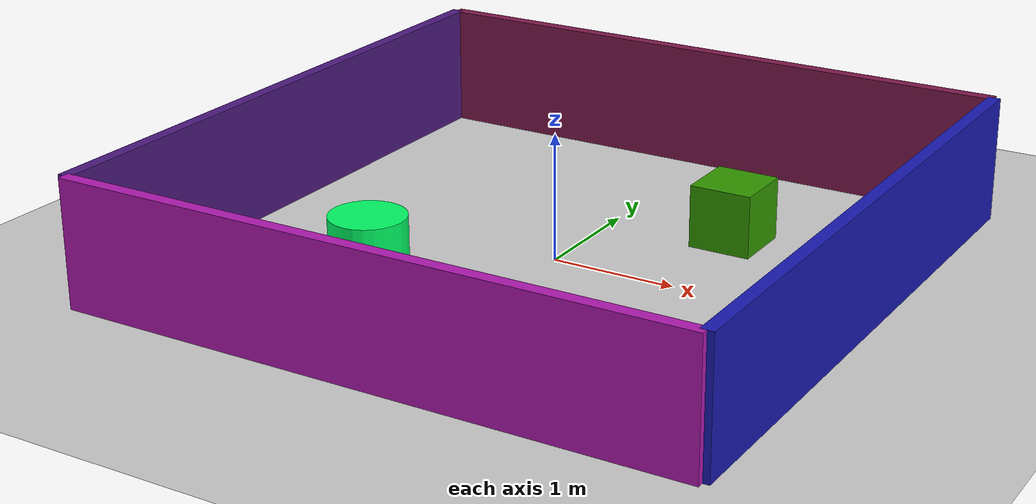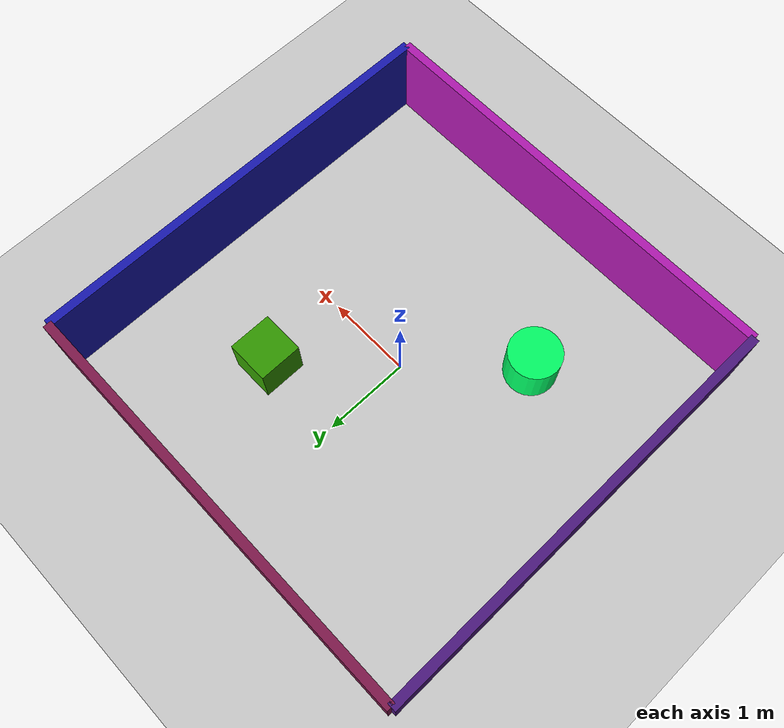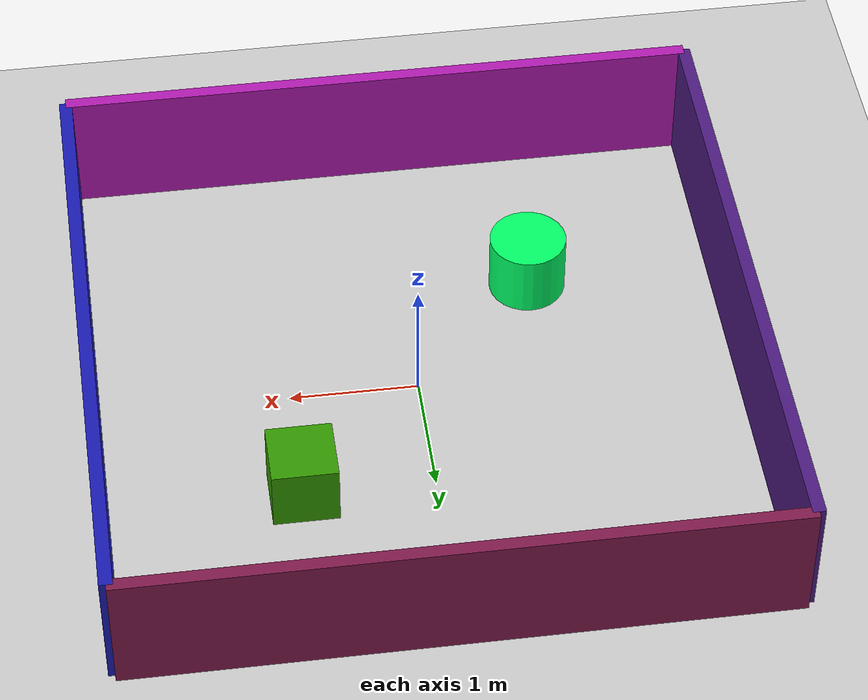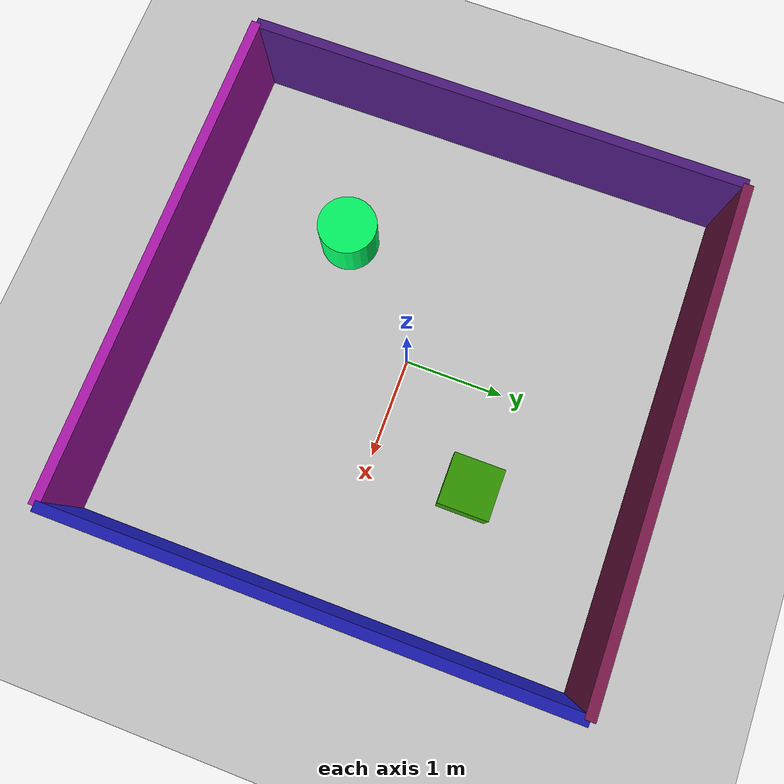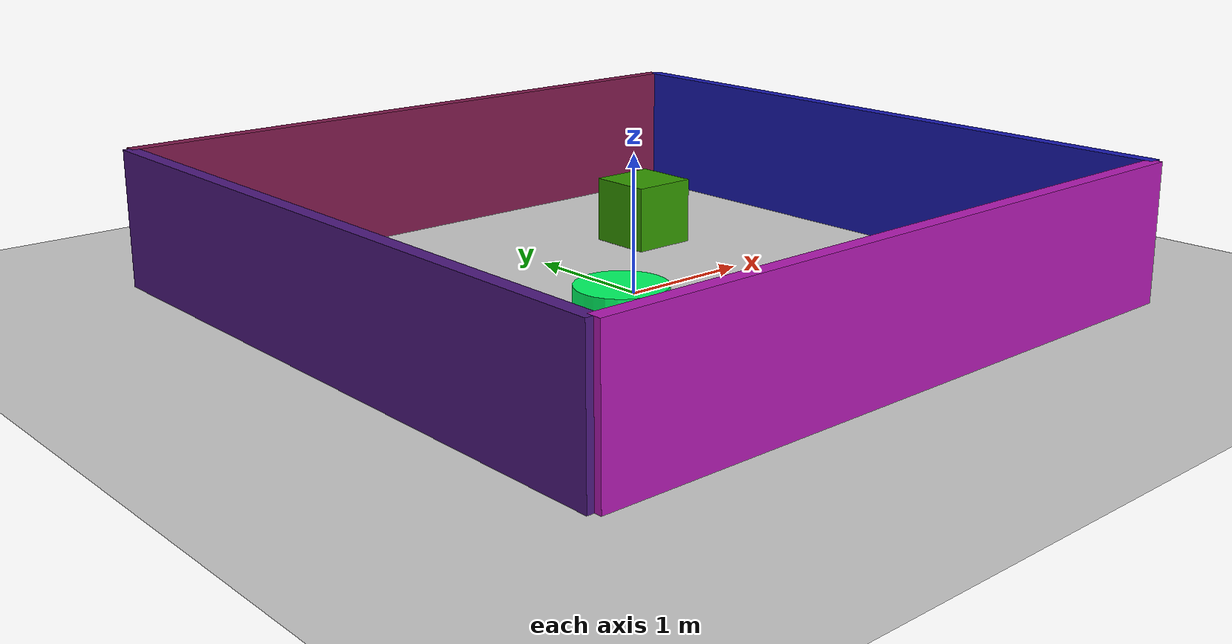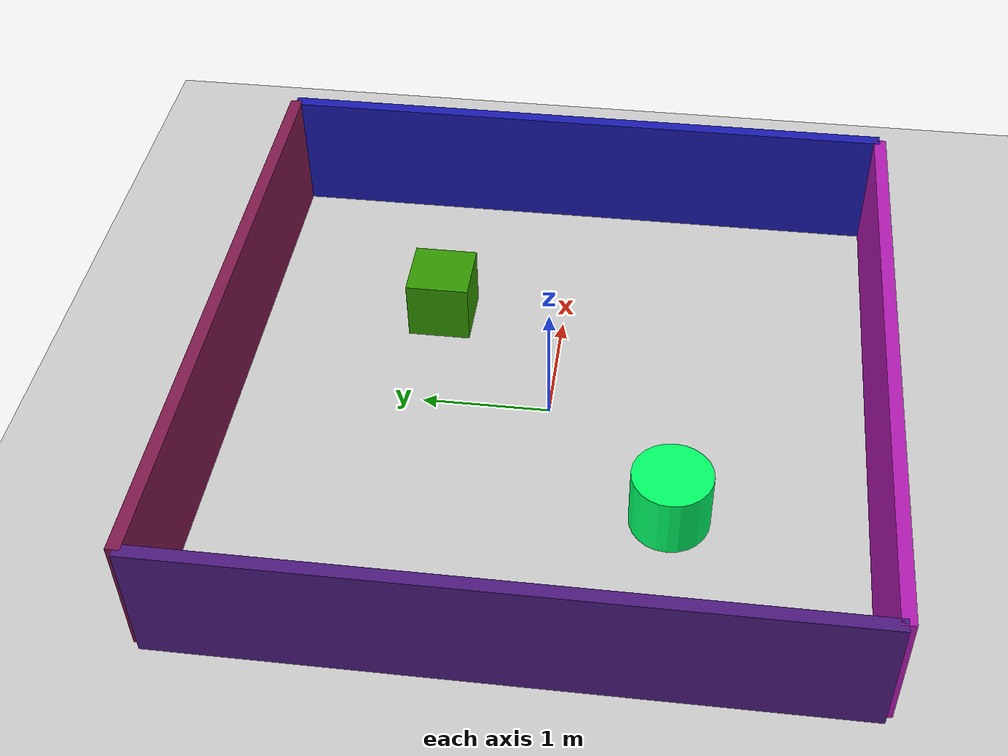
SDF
<?xml version="1.0" ?>
<sdf version="1.8">
  <world name="jetcar_world">
    <physics name="10ms" type="ignored">
      <max_step_size>0.01</max_step_size>
      <real_time_factor>1.0</real_time_factor>
    </physics>
    <plugin filename="gz-sim-physics-system" name="gz::sim::systems::Physics" />
    <plugin filename="gz-sim-user-commands-system" name="gz::sim::systems::UserCommands" />
    <plugin filename="gz-sim-scene-broadcaster-system" name="gz::sim::systems::SceneBroadcaster" />
    <plugin filename="gz-sim-sensors-system" name="gz::sim::systems::Sensors">
      <render_engine>ogre2</render_engine>
    </plugin>
    <plugin filename="gz-sim-imu-system" name="gz::sim::systems::Imu" />

    <light type="directional" name="sun">
      <cast_shadows>true</cast_shadows>
      <pose>0 0 10 0 0 0</pose>
      <diffuse>0.8 0.8 0.8 1</diffuse>
      <specular>0.2 0.2 0.2 1</specular>
      <attenuation>
        <range>1000</range>
        <constant>0.9</constant>
        <linear>0.01</linear>
        <quadratic>0.001</quadratic>
      </attenuation>
      <direction>-0.5 0.1 -0.9</direction>
    </light>

    <model name="ground_plane">
      <static>true</static>
      <link name="link">
        <collision name="collision">
          <geometry><plane><normal>0 0 1</normal><size>100 100</size></plane></geometry>
        </collision>
        <visual name="visual">
          <geometry><plane><normal>0 0 1</normal><size>100 100</size></plane></geometry>
          <material><ambient>0.8 0.8 0.8 1</ambient><diffuse>0.8 0.8 0.8 1</diffuse><specular>0.8 0.8 0.8 1</specular></material>
        </visual>
      </link>
    </model>

    <!-- Simple Room Walls (5x5m) -->
    <model name="wall_front">
      <static>true</static><pose>2.5 0 0.5 0 0 0</pose>
      <link name="link"><collision name="c"><geometry><box><size>0.1 5.0 1.0</size></box></geometry></collision>
      <visual name="v"><geometry><box><size>0.1 5.0 1.0</size></box></geometry><material><ambient>0.7 0.7 0.7 1</ambient><diffuse>0.1 0.1 0.7 1</diffuse></material></visual></link>
    </model>
    <model name="wall_back">
      <static>true</static><pose>-2.5 0 0.5 0 0 0</pose>
      <link name="link"><collision name="c"><geometry><box><size>0.1 5.0 1.0</size></box></geometry></collision>
      <visual name="v"><geometry><box><size>0.1 5.0 1.0</size></box></geometry><material><ambient>0.7 0.7 0.7 1</ambient><diffuse>0.3 0.1 0.5 1</diffuse></material></visual></link>
    </model>
    <model name="wall_left">
      <static>true</static><pose>0 2.5 0.5 0 0 0</pose>
      <link name="link"><collision name="c"><geometry><box><size>5.0 0.1 1.0</size></box></geometry></collision>
      <visual name="v"><geometry><box><size>5.0 0.1 1.0</size></box></geometry><material><ambient>0.7 0.7 0.7 1</ambient><diffuse>0.5 0.1 0.3 1</diffuse></material></visual></link>
    </model>
    <model name="wall_right">
      <static>true</static><pose>0 -2.5 0.5 0 0 0</pose>
      <link name="link"><collision name="c"><geometry><box><size>5.0 0.1 1.0</size></box></geometry></collision>
      <visual name="v"><geometry><box><size>5.0 0.1 1.0</size></box></geometry><material><ambient>0.7 0.7 0.7 1</ambient><diffuse>0.7 0.1 0.7 1</diffuse></material></visual></link>
    </model>

    <!-- Obstacles -->
    <model name="box1"><static>true</static><pose>1.0 1.0 0.25 0 0 0</pose>
      <link name="link"><collision name="c"><geometry><box><size>0.5 0.5 0.5</size></box></geometry></collision>
      <visual name="v"><geometry><box><size>0.5 0.5 0.5</size></box></geometry><material><ambient>1 0 0 1</ambient><diffuse>0.2 0.6 0 1</diffuse></material></visual></link>
    </model>
    <model name="cylinder1"><static>true</static><pose>-1.0 -1.0 0.25 0 0 0</pose>
      <link name="link"><collision name="c"><geometry><cylinder><radius>0.3</radius><length>0.5</length></cylinder></geometry></collision>
      <visual name="v"><geometry><cylinder><radius>0.3</radius><length>0.5</length></cylinder></geometry><material><ambient>0 1 0 1</ambient><diffuse>0 1 0.4 1</diffuse></material></visual></link>
    </model>

  </world>
</sdf>
